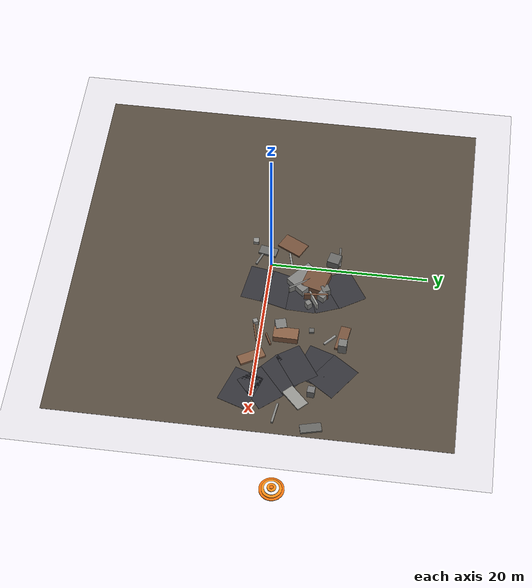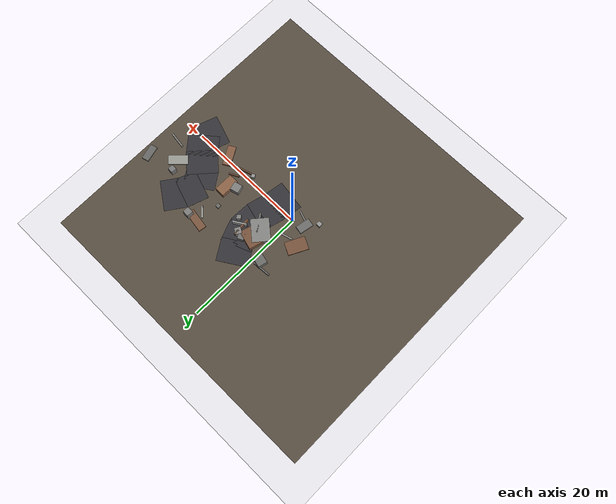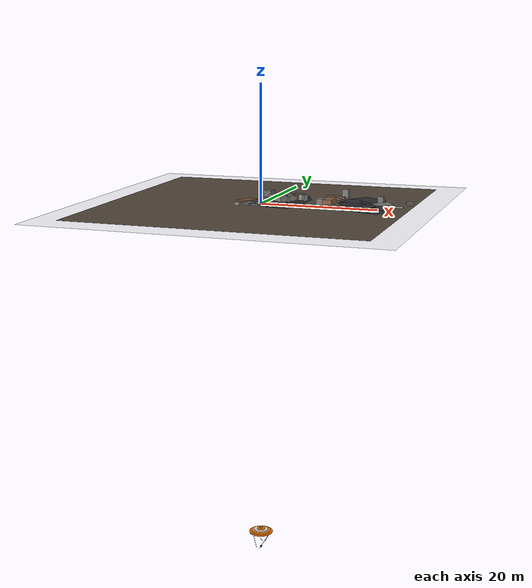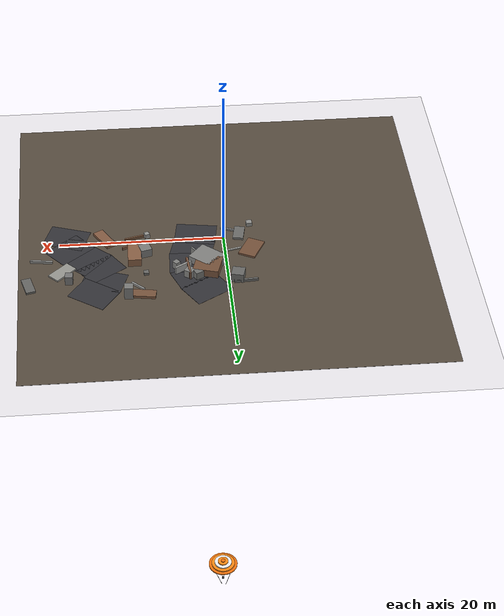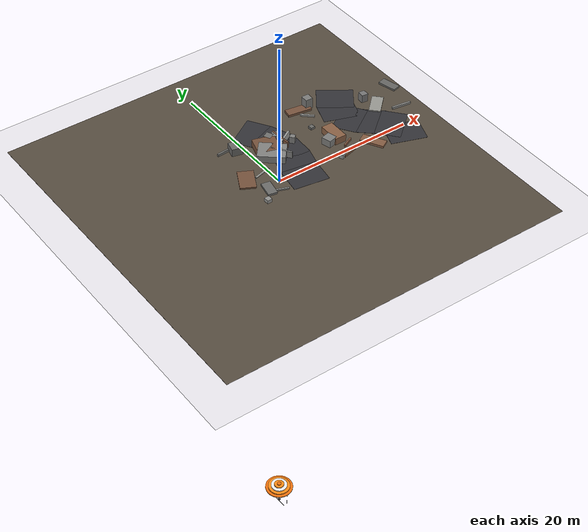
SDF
<sdf version="1.6">
 <world name="navitas_arena">
  <model name="ground_plane">
   <static>true</static>
   <link name="link">
    <collision name="collision">
     <geometry><plane><normal>0 0 1</normal><size>400 400</size></plane></geometry>
     <surface><friction><ode><mu>0.8</mu><mu2>0.8</mu2></ode></friction></surface>
    </collision>
    <visual name="visual">
     <cast_shadows>false</cast_shadows>
     <geometry><plane><normal>0 0 1</normal><size>400 400</size></plane></geometry>
     <material>
      <script><uri>file://media/materials/scripts/gazebo.material</uri><name>Gazebo/Grey</name></script>
     </material>
    </visual>
   </link>
  </model>
  <model name="gd_orta">
   <static>true</static>
   <pose>0.000 0.000 0.010 0 0 0.000</pose>
   <link name="link">
    <collision name="col"><geometry><box><size>50.000 50.000 0.020</size></box></geometry></collision>
    <visual name="vis">
     <geometry><box><size>50.000 50.000 0.020</size></box></geometry>
     <material><ambient>0.34 0.30 0.25 1</ambient><diffuse>0.34 0.30 0.25 1</diffuse></material>
    </visual>
   </link>
  </model>
  <model name="road_orta_2_7">
   <static>true</static>
   <pose>3.333 -1.000 0.040 0 0 1.415</pose>
   <link name="link">
    <collision name="col"><geometry><box><size>3.735 5.000 0.020</size></box></geometry></collision>
    <visual name="vis">
     <geometry><box><size>3.735 5.000 0.020</size></box></geometry>
     <material><ambient>0.20 0.20 0.22 1</ambient><diffuse>0.20 0.20 0.22 1</diffuse></material>
    </visual>
   </link>
  </model>
  <model name="road_orta_2_8">
   <static>true</static>
   <pose>3.928 1.800 0.040 0 0 1.309</pose>
   <link name="link">
    <collision name="col"><geometry><box><size>3.799 5.000 0.020</size></box></geometry></collision>
    <visual name="vis">
     <geometry><box><size>3.799 5.000 0.020</size></box></geometry>
     <material><ambient>0.20 0.20 0.22 1</ambient><diffuse>0.20 0.20 0.22 1</diffuse></material>
    </visual>
   </link>
  </model>
  <model name="road_orta_2_9">
   <static>true</static>
   <pose>4.358 4.600 0.040 0 0 1.532</pose>
   <link name="link">
    <collision name="col"><geometry><box><size>3.702 5.000 0.020</size></box></geometry></collision>
    <visual name="vis">
     <geometry><box><size>3.702 5.000 0.020</size></box></geometry>
     <material><ambient>0.20 0.20 0.22 1</ambient><diffuse>0.20 0.20 0.22 1</diffuse></material>
    </visual>
   </link>
  </model>
  <model name="road_orta_2_10">
   <static>true</static>
   <pose>3.943 7.213 0.040 0 0 1.940</pose>
   <link name="link">
    <collision name="col"><geometry><box><size>3.501 5.000 0.020</size></box></geometry></collision>
    <visual name="vis">
     <geometry><box><size>3.501 5.000 0.020</size></box></geometry>
     <material><ambient>0.20 0.20 0.22 1</ambient><diffuse>0.20 0.20 0.22 1</diffuse></material>
    </visual>
   </link>
  </model>
  <model name="road_orta_2_11">
   <static>true</static>
   <pose>2.720 9.639 0.040 0 0 2.127</pose>
   <link name="link">
    <collision name="col"><geometry><box><size>3.756 5.000 0.020</size></box></geometry></collision>
    <visual name="vis">
     <geometry><box><size>3.756 5.000 0.020</size></box></geometry>
     <material><ambient>0.20 0.20 0.22 1</ambient><diffuse>0.20 0.20 0.22 1</diffuse></material>
    </visual>
   </link>
  </model>
  <model name="road_orta_3_11">
   <static>true</static>
   <pose>19.123 -1.375 0.040 0 0 1.236</pose>
   <link name="link">
    <collision name="col"><geometry><box><size>3.812 5.000 0.020</size></box></geometry></collision>
    <visual name="vis">
     <geometry><box><size>3.812 5.000 0.020</size></box></geometry>
     <material><ambient>0.20 0.20 0.22 1</ambient><diffuse>0.20 0.20 0.22 1</diffuse></material>
    </visual>
   </link>
  </model>
  <model name="road_orta_3_12">
   <static>true</static>
   <pose>18.764 1.000 0.040 0 0 2.267</pose>
   <link name="link">
    <collision name="col"><geometry><box><size>3.508 5.000 0.020</size></box></geometry></collision>
    <visual name="vis">
     <geometry><box><size>3.508 5.000 0.020</size></box></geometry>
     <material><ambient>0.20 0.20 0.22 1</ambient><diffuse>0.20 0.20 0.22 1</diffuse></material>
    </visual>
   </link>
  </model>
  <model name="road_orta_3_13">
   <static>true</static>
   <pose>16.814 3.000 0.040 0 0 2.410</pose>
   <link name="link">
    <collision name="col"><geometry><box><size>3.893 5.000 0.020</size></box></geometry></collision>
    <visual name="vis">
     <geometry><box><size>3.893 5.000 0.020</size></box></geometry>
     <material><ambient>0.20 0.20 0.22 1</ambient><diffuse>0.20 0.20 0.22 1</diffuse></material>
    </visual>
   </link>
  </model>
  <model name="road_orta_3_14">
   <static>true</static>
   <pose>15.030 5.000 0.040 0 0 2.161</pose>
   <link name="link">
    <collision name="col"><geometry><box><size>3.308 5.000 0.020</size></box></geometry></collision>
    <visual name="vis">
     <geometry><box><size>3.308 5.000 0.020</size></box></geometry>
     <material><ambient>0.20 0.20 0.22 1</ambient><diffuse>0.20 0.20 0.22 1</diffuse></material>
    </visual>
   </link>
  </model>
  <model name="road_orta_3_15">
   <static>true</static>
   <pose>14.776 7.213 0.040 0 0 1.240</pose>
   <link name="link">
    <collision name="col"><geometry><box><size>3.465 5.000 0.020</size></box></geometry></collision>
    <visual name="vis">
     <geometry><box><size>3.465 5.000 0.020</size></box></geometry>
     <material><ambient>0.20 0.20 0.22 1</ambient><diffuse>0.20 0.20 0.22 1</diffuse></material>
    </visual>
   </link>
  </model>
  <model name="road_orta_3_16">
   <static>true</static>
   <pose>16.047 9.639 0.040 0 0 0.957</pose>
   <link name="link">
    <collision name="col"><geometry><box><size>3.869 5.000 0.020</size></box></geometry></collision>
    <visual name="vis">
     <geometry><box><size>3.869 5.000 0.020</size></box></geometry>
     <material><ambient>0.20 0.20 0.22 1</ambient><diffuse>0.20 0.20 0.22 1</diffuse></material>
    </visual>
   </link>
  </model>
  <model name="blk_orta_2_1_0">
   <static>true</static>
   <pose>2.205 4.634 0.500 0 0 2.434</pose>
   <link name="link">
    <collision name="col"><geometry><box><size>3.707 2.877 1.000</size></box></geometry></collision>
    <visual name="vis">
     <geometry><box><size>3.707 2.877 1.000</size></box></geometry>
     <material><ambient>0.51 0.51 0.50 1</ambient><diffuse>0.51 0.51 0.50 1</diffuse></material>
    </visual>
   </link>
  </model>
  <model name="blk_orta_2_1_1">
   <static>true</static>
   <pose>2.326 6.025 0.500 0 0 2.860</pose>
   <link name="link">
    <collision name="col"><geometry><box><size>3.092 2.949 1.000</size></box></geometry></collision>
    <visual name="vis">
     <geometry><box><size>3.092 2.949 1.000</size></box></geometry>
     <material><ambient>0.46 0.32 0.23 1</ambient><diffuse>0.46 0.32 0.23 1</diffuse></material>
    </visual>
   </link>
  </model>
  <model name="blk_orta_2_1_2">
   <static>true</static>
   <pose>4.656 6.267 0.500 0 0 1.656</pose>
   <link name="link">
    <collision name="col"><geometry><box><size>3.035 0.253 1.000</size></box></geometry></collision>
    <visual name="vis">
     <geometry><box><size>3.035 0.253 1.000</size></box></geometry>
     <material><ambient>0.48 0.33 0.24 1</ambient><diffuse>0.48 0.33 0.24 1</diffuse></material>
    </visual>
   </link>
  </model>
  <model name="blk_orta_2_1_3">
   <static>true</static>
   <pose>5.275 6.041 0.500 0 0 0.544</pose>
   <link name="link">
    <collision name="col"><geometry><box><size>2.263 0.248 1.000</size></box></geometry></collision>
    <visual name="vis">
     <geometry><box><size>2.263 0.248 1.000</size></box></geometry>
     <material><ambient>0.62 0.62 0.61 1</ambient><diffuse>0.62 0.62 0.61 1</diffuse></material>
    </visual>
   </link>
  </model>
  <model name="blk_orta_2_1_4">
   <static>true</static>
   <pose>4.554 7.072 0.500 0 0 2.579</pose>
   <link name="link">
    <collision name="col"><geometry><box><size>1.030 1.030 1.000</size></box></geometry></collision>
    <visual name="vis">
     <geometry><box><size>1.030 1.030 1.000</size></box></geometry>
     <material><ambient>0.51 0.51 0.50 1</ambient><diffuse>0.51 0.51 0.50 1</diffuse></material>
    </visual>
   </link>
  </model>
  <model name="blk_orta_2_1_5">
   <static>true</static>
   <pose>3.217 4.039 0.500 0 0 2.170</pose>
   <link name="link">
    <collision name="col"><geometry><box><size>3.060 0.225 1.000</size></box></geometry></collision>
    <visual name="vis">
     <geometry><box><size>3.060 0.225 1.000</size></box></geometry>
     <material><ambient>0.50 0.50 0.49 1</ambient><diffuse>0.50 0.50 0.49 1</diffuse></material>
    </visual>
   </link>
  </model>
  <model name="blk_orta_2_1_6">
   <static>true</static>
   <pose>3.591 7.356 0.500 0 0 2.028</pose>
   <link name="link">
    <collision name="col"><geometry><box><size>0.998 0.998 1.000</size></box></geometry></collision>
    <visual name="vis">
     <geometry><box><size>0.998 0.998 1.000</size></box></geometry>
     <material><ambient>0.44 0.44 0.43 1</ambient><diffuse>0.44 0.44 0.43 1</diffuse></material>
    </visual>
   </link>
  </model>
  <model name="blk_orta_2_1_7">
   <static>true</static>
   <pose>6.046 5.458 0.500 0 0 0.701</pose>
   <link name="link">
    <collision name="col"><geometry><box><size>0.685 0.685 1.000</size></box></geometry></collision>
    <visual name="vis">
     <geometry><box><size>0.685 0.685 1.000</size></box></geometry>
     <material><ambient>0.50 0.50 0.49 1</ambient><diffuse>0.50 0.50 0.49 1</diffuse></material>
    </visual>
   </link>
  </model>
  <model name="deb_orta_4">
   <static>true</static>
   <pose>10.810 8.692 0.136 0 0 2.388</pose>
   <link name="link">
    <collision name="col"><geometry><box><size>1.908 0.245 0.273</size></box></geometry></collision>
    <visual name="vis">
     <geometry><box><size>1.908 0.245 0.273</size></box></geometry>
     <material><ambient>0.60 0.60 0.59 1</ambient><diffuse>0.60 0.60 0.59 1</diffuse></material>
    </visual>
   </link>
  </model>
  <model name="deb_orta_6">
   <static>true</static>
   <pose>-0.846 2.484 0.080 0 0 0.252</pose>
   <link name="link">
    <collision name="col"><geometry><box><size>2.424 0.241 0.159</size></box></geometry></collision>
    <visual name="vis">
     <geometry><box><size>2.424 0.241 0.159</size></box></geometry>
     <material><ambient>0.60 0.60 0.58 1</ambient><diffuse>0.60 0.60 0.58 1</diffuse></material>
    </visual>
   </link>
  </model>
  <model name="deb_orta_13">
   <static>true</static>
   <pose>9.729 6.298 0.180 0 0 1.626</pose>
   <link name="link">
    <collision name="col"><geometry><box><size>0.613 0.613 0.359</size></box></geometry></collision>
    <visual name="vis">
     <geometry><box><size>0.613 0.613 0.359</size></box></geometry>
     <material><ambient>0.41 0.41 0.40 1</ambient><diffuse>0.41 0.41 0.40 1</diffuse></material>
    </visual>
   </link>
  </model>
  <model name="deb_orta_30">
   <static>true</static>
   <pose>18.930 7.232 0.584 0 0 3.050</pose>
   <link name="link">
    <collision name="col"><geometry><box><size>0.913 0.913 1.167</size></box></geometry></collision>
    <visual name="vis">
     <geometry><box><size>0.913 0.913 1.167</size></box></geometry>
     <material><ambient>0.46 0.46 0.46 1</ambient><diffuse>0.46 0.46 0.46 1</diffuse></material>
    </visual>
   </link>
  </model>
  <model name="deb_orta_42">
   <static>true</static>
   <pose>-3.369 -2.392 0.255 0 0 1.610</pose>
   <link name="link">
    <collision name="col"><geometry><box><size>0.706 0.706 0.510</size></box></geometry></collision>
    <visual name="vis">
     <geometry><box><size>0.706 0.706 0.510</size></box></geometry>
     <material><ambient>0.57 0.57 0.56 1</ambient><diffuse>0.57 0.57 0.56 1</diffuse></material>
    </visual>
   </link>
  </model>
  <model name="deb_orta_44">
   <static>true</static>
   <pose>14.480 -0.667 0.171 0 0 2.085</pose>
   <link name="link">
    <collision name="col"><geometry><box><size>3.300 1.317 0.341</size></box></geometry></collision>
    <visual name="vis">
     <geometry><box><size>3.300 1.317 0.341</size></box></geometry>
     <material><ambient>0.52 0.36 0.26 1</ambient><diffuse>0.52 0.36 0.26 1</diffuse></material>
    </visual>
   </link>
  </model>
  <model name="deb_orta_46">
   <static>true</static>
   <pose>9.336 -0.830 0.329 0 0 0.427</pose>
   <link name="link">
    <collision name="col"><geometry><box><size>0.577 0.577 0.658</size></box></geometry></collision>
    <visual name="vis">
     <geometry><box><size>0.577 0.577 0.658</size></box></geometry>
     <material><ambient>0.58 0.58 0.57 1</ambient><diffuse>0.58 0.58 0.57 1</diffuse></material>
    </visual>
   </link>
  </model>
  <model name="deb_orta_50">
   <static>true</static>
   <pose>22.229 3.210 0.171 0 0 2.999</pose>
   <link name="link">
    <collision name="col"><geometry><box><size>2.726 0.258 0.343</size></box></geometry></collision>
    <visual name="vis">
     <geometry><box><size>2.726 0.258 0.343</size></box></geometry>
     <material><ambient>0.53 0.53 0.52 1</ambient><diffuse>0.53 0.53 0.52 1</diffuse></material>
    </visual>
   </link>
  </model>
  <model name="deb_orta_55">
   <static>true</static>
   <pose>11.644 1.062 0.182 0 0 0.457</pose>
   <link name="link">
    <collision name="col"><geometry><box><size>1.699 0.204 0.364</size></box></geometry></collision>
    <visual name="vis">
     <geometry><box><size>1.699 0.204 0.364</size></box></geometry>
     <material><ambient>0.48 0.33 0.24 1</ambient><diffuse>0.48 0.33 0.24 1</diffuse></material>
    </visual>
   </link>
  </model>
  <model name="deb_orta_64">
   <static>true</static>
   <pose>-1.964 -0.618 0.156 0 0 1.379</pose>
   <link name="link">
    <collision name="col"><geometry><box><size>2.315 1.285 0.313</size></box></geometry></collision>
    <visual name="vis">
     <geometry><box><size>2.315 1.285 0.313</size></box></geometry>
     <material><ambient>0.42 0.42 0.41 1</ambient><diffuse>0.42 0.42 0.41 1</diffuse></material>
    </visual>
   </link>
  </model>
  <model name="deb_orta_68">
   <static>true</static>
   <pose>-3.260 2.451 0.131 0 0 1.092</pose>
   <link name="link">
    <collision name="col"><geometry><box><size>3.286 2.129 0.262</size></box></geometry></collision>
    <visual name="vis">
     <geometry><box><size>3.286 2.129 0.262</size></box></geometry>
     <material><ambient>0.46 0.32 0.23 1</ambient><diffuse>0.46 0.32 0.23 1</diffuse></material>
    </visual>
   </link>
  </model>
  <model name="deb_orta_70">
   <static>true</static>
   <pose>10.791 -0.659 0.172 0 0 0.267</pose>
   <link name="link">
    <collision name="col"><geometry><box><size>2.581 0.217 0.344</size></box></geometry></collision>
    <visual name="vis">
     <geometry><box><size>2.581 0.217 0.344</size></box></geometry>
     <material><ambient>0.47 0.33 0.23 1</ambient><diffuse>0.47 0.33 0.23 1</diffuse></material>
    </visual>
   </link>
  </model>
  <model name="deb_orta_71">
   <static>true</static>
   <pose>19.735 5.393 0.110 0 0 0.769</pose>
   <link name="link">
    <collision name="col"><geometry><box><size>3.123 1.564 0.220</size></box></geometry></collision>
    <visual name="vis">
     <geometry><box><size>3.123 1.564 0.220</size></box></geometry>
     <material><ambient>0.59 0.59 0.57 1</ambient><diffuse>0.59 0.59 0.57 1</diffuse></material>
    </visual>
   </link>
  </model>
  <model name="deb_orta_74">
   <static>true</static>
   <pose>-0.904 -1.486 0.116 0 0 2.772</pose>
   <link name="link">
    <collision name="col"><geometry><box><size>2.365 0.246 0.232</size></box></geometry></collision>
    <visual name="vis">
     <geometry><box><size>2.365 0.246 0.232</size></box></geometry>
     <material><ambient>0.50 0.50 0.49 1</ambient><diffuse>0.50 0.50 0.49 1</diffuse></material>
    </visual>
   </link>
  </model>
  <model name="deb_orta_102">
   <static>true</static>
   <pose>23.767 7.732 0.144 0 0 1.817</pose>
   <link name="link">
    <collision name="col"><geometry><box><size>2.614 1.158 0.287</size></box></geometry></collision>
    <visual name="vis">
     <geometry><box><size>2.614 1.158 0.287</size></box></geometry>
     <material><ambient>0.40 0.40 0.39 1</ambient><diffuse>0.40 0.40 0.39 1</diffuse></material>
    </visual>
   </link>
  </model>
  <model name="deb_orta_105">
   <static>true</static>
   <pose>11.968 10.368 0.789 0 0 1.526</pose>
   <link name="link">
    <collision name="col"><geometry><box><size>1.050 1.050 1.577</size></box></geometry></collision>
    <visual name="vis">
     <geometry><box><size>1.050 1.050 1.577</size></box></geometry>
     <material><ambient>0.48 0.48 0.47 1</ambient><diffuse>0.48 0.48 0.47 1</diffuse></material>
    </visual>
   </link>
  </model>
  <model name="deb_orta_116">
   <static>true</static>
   <pose>10.452 10.257 0.181 0 0 2.985</pose>
   <link name="link">
    <collision name="col"><geometry><box><size>3.416 1.258 0.361</size></box></geometry></collision>
    <visual name="vis">
     <geometry><box><size>3.416 1.258 0.361</size></box></geometry>
     <material><ambient>0.47 0.33 0.24 1</ambient><diffuse>0.47 0.33 0.24 1</diffuse></material>
    </visual>
   </link>
  </model>
  <model name="deb_orta_122">
   <static>true</static>
   <pose>-2.058 8.675 0.184 0 0 0.071</pose>
   <link name="link">
    <collision name="col"><geometry><box><size>2.878 0.250 0.368</size></box></geometry></collision>
    <visual name="vis">
     <geometry><box><size>2.878 0.250 0.368</size></box></geometry>
     <material><ambient>0.42 0.42 0.41 1</ambient><diffuse>0.42 0.42 0.41 1</diffuse></material>
    </visual>
   </link>
  </model>
  <model name="deb_orta_126">
   <static>true</static>
   <pose>11.267 2.095 0.200 0 0 1.403</pose>
   <link name="link">
    <collision name="col"><geometry><box><size>0.701 0.701 0.400</size></box></geometry></collision>
    <visual name="vis">
     <geometry><box><size>0.701 0.701 0.400</size></box></geometry>
     <material><ambient>0.53 0.53 0.52 1</ambient><diffuse>0.53 0.53 0.52 1</diffuse></material>
    </visual>
   </link>
  </model>
  <model name="deb_orta_131">
   <static>true</static>
   <pose>11.349 2.022 0.344 0 0 2.542</pose>
   <link name="link">
    <collision name="col"><geometry><box><size>0.484 0.484 0.689</size></box></geometry></collision>
    <visual name="vis">
     <geometry><box><size>0.484 0.484 0.689</size></box></geometry>
     <material><ambient>0.42 0.42 0.41 1</ambient><diffuse>0.42 0.42 0.41 1</diffuse></material>
    </visual>
   </link>
  </model>
  <model name="deb_orta_145">
   <static>true</static>
   <pose>-1.148 8.007 0.566 0 0 1.330</pose>
   <link name="link">
    <collision name="col"><geometry><box><size>1.518 1.518 1.132</size></box></geometry></collision>
    <visual name="vis">
     <geometry><box><size>1.518 1.518 1.132</size></box></geometry>
     <material><ambient>0.41 0.41 0.40 1</ambient><diffuse>0.41 0.41 0.40 1</diffuse></material>
    </visual>
   </link>
  </model>
  <model name="deb_orta_156">
   <static>true</static>
   <pose>9.684 2.425 0.534 0 0 0.260</pose>
   <link name="link">
    <collision name="col"><geometry><box><size>1.367 1.367 1.068</size></box></geometry></collision>
    <visual name="vis">
     <geometry><box><size>1.367 1.367 1.068</size></box></geometry>
     <material><ambient>0.49 0.49 0.48 1</ambient><diffuse>0.49 0.49 0.48 1</diffuse></material>
    </visual>
   </link>
  </model>
  <model name="chic_orta_2">
   <static>true</static>
   <pose>10.995 3.198 0.500 0 0 1.555</pose>
   <link name="link">
    <collision name="col"><geometry><box><size>3.114 1.619 1.000</size></box></geometry></collision>
    <visual name="vis">
     <geometry><box><size>3.114 1.619 1.000</size></box></geometry>
     <material><ambient>0.54 0.38 0.27 1</ambient><diffuse>0.54 0.38 0.27 1</diffuse></material>
    </visual>
   </link>
  </model>
  <model name="parachute">
   <static>true</static>
   <pose>0 0 -60 0 0 0</pose>
   <link name="link">
    <visual name="dome0">
     <geometry><cylinder><radius>2.10</radius><length>0.16</length></cylinder></geometry>
     <material><ambient>0.95 0.45 0.05 1</ambient><diffuse>0.95 0.45 0.05 1</diffuse></material>
    </visual>
    <visual name="dome1">
     <pose>0 0 0.22 0 0 0</pose>
     <geometry><cylinder><radius>1.70</radius><length>0.16</length></cylinder></geometry>
     <material><ambient>1.0 0.55 0.08 1</ambient><diffuse>1.0 0.55 0.08 1</diffuse></material>
    </visual>
    <visual name="dome2">
     <pose>0 0 0.42 0 0 0</pose>
     <geometry><cylinder><radius>1.25</radius><length>0.16</length></cylinder></geometry>
     <material><ambient>0.95 0.95 0.95 1</ambient><diffuse>0.95 0.95 0.95 1</diffuse></material>
    </visual>
    <visual name="dome3">
     <pose>0 0 0.58 0 0 0</pose>
     <geometry><cylinder><radius>0.75</radius><length>0.16</length></cylinder></geometry>
     <material><ambient>1.0 0.55 0.08 1</ambient><diffuse>1.0 0.55 0.08 1</diffuse></material>
    </visual>
    <visual name="dome4">
     <pose>0 0 0.70 0 0 0</pose>
     <geometry><cylinder><radius>0.32</radius><length>0.16</length></cylinder></geometry>
     <material><ambient>0.95 0.45 0.05 1</ambient><diffuse>0.95 0.45 0.05 1</diffuse></material>
    </visual>
    <visual name="line0">
     <pose>0.90 0.90 -1.5 0.500 0.500 0</pose>
     <geometry><cylinder><radius>0.02</radius><length>3.0</length></cylinder></geometry>
     <material><ambient>0.1 0.1 0.1 1</ambient><diffuse>0.15 0.15 0.15 1</diffuse></material>
    </visual>
    <visual name="line1">
     <pose>0.90 -0.90 -1.5 -0.500 0.500 0</pose>
     <geometry><cylinder><radius>0.02</radius><length>3.0</length></cylinder></geometry>
     <material><ambient>0.1 0.1 0.1 1</ambient><diffuse>0.15 0.15 0.15 1</diffuse></material>
    </visual>
    <visual name="line2">
     <pose>-0.90 0.90 -1.5 0.500 -0.500 0</pose>
     <geometry><cylinder><radius>0.02</radius><length>3.0</length></cylinder></geometry>
     <material><ambient>0.1 0.1 0.1 1</ambient><diffuse>0.15 0.15 0.15 1</diffuse></material>
    </visual>
    <visual name="line3">
     <pose>-0.90 -0.90 -1.5 -0.500 -0.500 0</pose>
     <geometry><cylinder><radius>0.02</radius><length>3.0</length></cylinder></geometry>
     <material><ambient>0.1 0.1 0.1 1</ambient><diffuse>0.15 0.15 0.15 1</diffuse></material>
    </visual>
    <visual name="harness">
     <pose>0 0 -3.0 0 0 0</pose>
     <geometry><box><size>0.3 0.3 0.2</size></box></geometry>
     <material><ambient>0.2 0.2 0.2 1</ambient><diffuse>0.25 0.25 0.25 1</diffuse></material>
    </visual>
   </link>
  </model>
  <model name="rec_cam">
   <static>true</static>
   <pose>0.000 0.000 72 0 1.5708 1.5708</pose>
   <link name="link">
    <sensor name="cam" type="camera">
     <camera>
      <horizontal_fov>1.25</horizontal_fov>
      <image><width>1280</width><height>720</height><format>R8G8B8</format></image>
      <clip><near>0.1</near><far>200</far></clip>
      <save enabled="true"><path>/tmp/frames</path></save>
     </camera>
     <always_on>1</always_on>
     <update_rate>30</update_rate>
    </sensor>
   </link>
  </model>
 </world>
</sdf>
